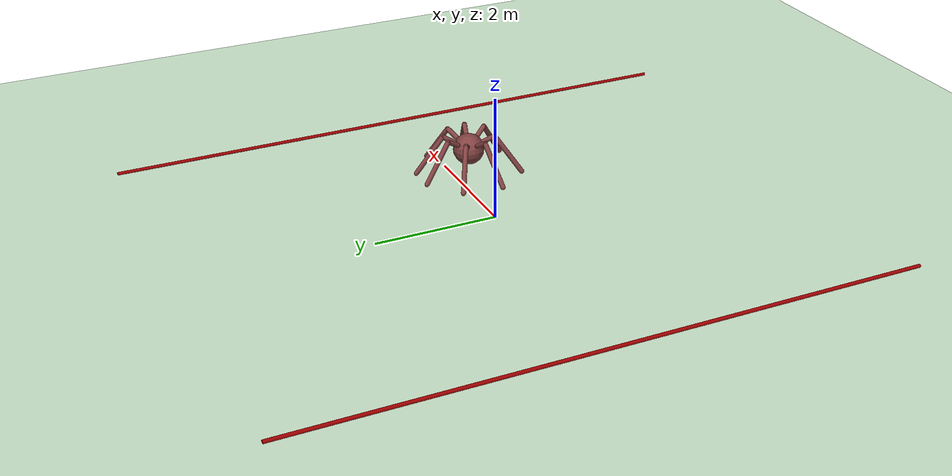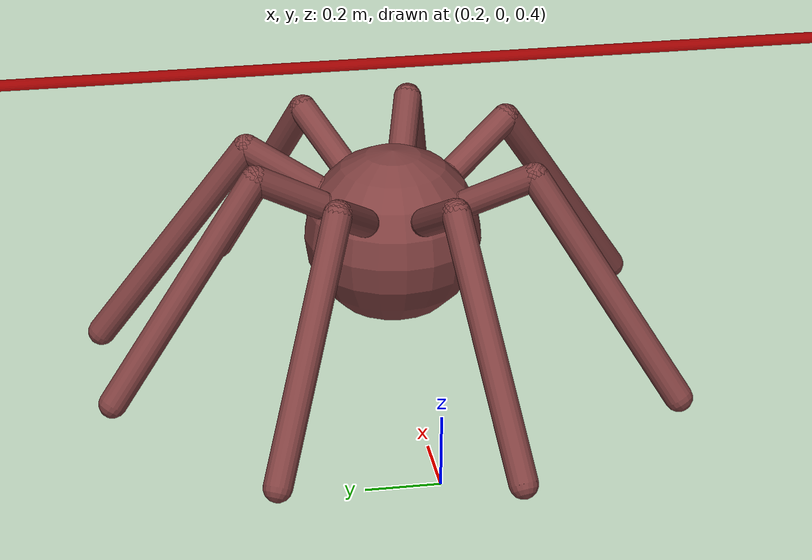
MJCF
<mujoco model="mutiagent_world">
  <compiler angle="degree" coordinate="local" inertiafromgeom="true" />

  <option integrator="RK4" timestep="0.003" solver="PGS" iterations="1000" />

  <default>
    <joint armature="1" damping="1" limited="true" />
  <default class="agent0"><geom conaffinity="1" condim="3" density="5.0" friction="1 0.5 0.5" margin="0.01" rgba="0.5 0.25 0.25 1" material="geom" />
    <motor ctrllimited="true" ctrlrange="-1. 1." />
  </default></default>
  <visual>
    <headlight ambient=".1 .1 .1" diffuse=".6 .6 .6" specular="0.3 0.3 0.3" />
    <map znear=".01" />
    <quality shadowsize="16384" />
  </visual>

  <asset>
    <texture builtin="gradient" height="100" rgb1=".4 .5 .6" rgb2="0 0 0" type="skybox" width="100" />
    <texture builtin="flat" height="1278" mark="cross" markrgb="0 0 0" name="texgeom" random="0.01" rgb1="0.8 0.6 0.4" rgb2="1 1 1" type="cube" width="127" />
    <texture builtin="checker" height="100" name="texplane" rgb1="0 0 0" rgb2="0.8 0.8 0.8" type="2d" width="100" />
    <material name="geom" texture="texgeom" texuniform="true" />
    <texture name="MatPlane" type="2d" builtin="checker" rgb1=".4 .4 .4" rgb2=".4 .4 .4" width="300" height="300" mark="edge" markrgb="0.1 0.1 0.1" />
    <material name="MatPlane" texture="MatPlane" texrepeat="2 2" texuniform="true" reflectance=".2" />
  </asset>
  <worldbody>
    <light cutoff="100" diffuse="1 1 1" dir="-0 0 -1.3" directional="true" exponent="1" pos="0 0 1.3" specular=".1 .1 .1" />
    <geom contype="1" conaffinity="1" friction="1 .1 .1" condim="3" material="MatPlane" name="floor" pos="0 0 0" rgba="0.8 0.9 0.8 1" size="20 20 0.125" type="plane" />
    <geom fromto="4 -5 0  4 +5 0" name="rightgoal" rgba="0.6 0.0 0.0 1" size=".03" type="cylinder" />
    <geom fromto="-4 -5 0  -4 +5 0" name="leftgoal" rgba="0.6 0.0 0.0 1" size=".03" type="cylinder" />
  <body name="agent0/torso" pos="1 0 0.75">
    <geom name="agent0/torso_geom" pos="0 0 0" size="0.25" type="sphere" class="agent0" />
    <joint armature="0" damping="0" limited="false" margin="0.01" name="agent0/root" pos="0 0 0" type="free" />

    <body name="agent0/back_right_leg" pos="0 0 0">
      <geom density="5.0" fromto="0 0 0 -0.056 0.209 0.125" name="agent0/aux_1_geom" size="0.04" type="capsule" class="agent0" />
      <body name="agent0/aux_11" pos="-0.056 0.209 0.125">
        <joint axis="0 0 1" name="agent0/hip_1" pos="0 0 0" range="-20 20" type="hinge" />
        <geom density="5.0" fromto="0 0 0 -0.050 0.188 0.113" name="agent0/back_right_leg_geom" size="0.04" type="capsule" class="agent0" />
        <body name="agent0/aux_12" pos="-0.050 0.188 0.113">
          <joint axis="0.97 0.26 0" name="agent0/ankle_1" pos="0 0 0" range="-35 45" type="hinge" />
          <geom density="5.0" fromto="0 0 0 -0.112 0.418 -0.600" name="agent0/back_right_ankle_geom" size="0.04" type="capsule" class="agent0" />
        </body>
      </body>
    </body>

    <body name="agent0/back_left_leg" pos="0 0 0">
      <geom density="5.0" fromto="0 0 0 0.056 0.209 0.125" name="agent0/aux_2_geom" size="0.04" type="capsule" class="agent0" />
      <body name="agent0/aux_21" pos="0.056 0.209 0.125">
        <joint axis="0 0 1" name="agent0/hip_2" pos="0 0 0" range="-20 20" type="hinge" />
        <geom density="5.0" fromto="0 0 0 0.050 0.188 0.113" name="agent0/back_left_leg_geom" size="0.04" type="capsule" class="agent0" />
        <body name="agent0/aux_22" pos="0.050 0.188 0.113">
          <joint axis="-0.97 0.26 0" name="agent0/ankle_2" pos="0 0 0" range="-45 35" type="hinge" />
          <geom density="5.0" fromto="0 0 0 0.112 0.418 -0.600" name="agent0/back_left_ankle_geom" size="0.04" type="capsule" class="agent0" />
        </body>
      </body>
    </body>

    <body name="agent0/middle_back_right_leg" pos="0 0 0">
      <geom density="5.0" fromto="0 0 0 -0.188 0.108 0.125" name="agent0/aux_3_geom" size="0.04" type="capsule" class="agent0" />
      <body name="agent0/aux_31" pos="-0.188 0.108 0.125">
        <joint axis="0 0 1" name="agent0/hip_3" pos="0 0 0" range="-20 20" type="hinge" />
        <geom density="5.0" fromto="0 0 0 -0.170 0.097 0.113" name="agent0/middle_back_right_leg_geom" size="0.04" type="capsule" class="agent0" />
        <body name="agent0/aux_32" pos="-0.170 0.097 0.113">
          <joint axis="0.50 0.87 0" name="agent0/ankle_3" pos="0 0 0" range="-35 45" type="hinge" />
          <geom density="5.0" fromto="0 0 0 -0.376 0.216 -0.600" name="agent0/middle_back_right_ankle_geom" size="0.04" type="capsule" class="agent0" />
        </body>
      </body>
    </body>

    <body name="agent0/middle_back_left_leg" pos="0 0 0">
      <geom density="5.0" fromto="0 0 0 0.188 0.108 0.125" name="agent0/aux_4_geom" size="0.04" type="capsule" class="agent0" />
      <body name="agent0/aux_41" pos="0.188 0.108 0.125">
        <joint axis="0 0 1" name="agent0/hip_4" pos="0 0 0" range="-20 20" type="hinge" />
        <geom density="5.0" fromto="0 0 0 0.170 0.097 0.113" name="agent0/middle_back_left_leg_geom" size="0.04" type="capsule" class="agent0" />
        <body name="agent0/aux_42" pos="0.170 0.097 0.113">
          <joint axis="-0.50 0.87 0" name="agent0/ankle_4" pos="0 0 0" range="-45 35" type="hinge" />
          <geom density="5.0" fromto="0 0 0 0.376 0.216 -0.600" name="agent0/middle_back_left_ankle_geom" size="0.04" type="capsule" class="agent0" />
        </body>
      </body>
    </body>

    <body name="agent0/middle_front_right_leg" pos="0 0 0">
      <geom density="5.0" fromto="0 0 0 -0.209 -0.056 0.125" name="agent0/aux_5_geom" size="0.04" type="capsule" class="agent0" />
      <body name="agent0/aux_51" pos="-0.209 -0.056 0.125">
        <joint axis="0 0 1" name="agent0/hip_5" pos="0 0 0" range="-20 20" type="hinge" />
        <geom density="5.0" fromto="0 0 0 -0.188 -0.050 0.113" name="agent0/middle_front_right_leg_geom" size="0.04" type="capsule" class="agent0" />
        <body name="agent0/aux_52" pos="-0.188 -0.050 0.113">
          <joint axis="-0.26 0.97 0" name="agent0/ankle_5" pos="0 0 0" range="-35 45" type="hinge" />
          <geom density="5.0" fromto="0 0 0 -0.418 -0.112 -0.600" name="agent0/middle_front_right_ankle_geom" size="0.04" type="capsule" class="agent0" />
        </body>
      </body>
    </body>

    <body name="agent0/middle_front_left_leg" pos="0 0 0">
      <geom density="5.0" fromto="0 0 0 0.209 -0.056 0.125" name="agent0/aux_6_geom" size="0.04" type="capsule" class="agent0" />
      <body name="agent0/aux_61" pos="0.209 -0.056 0.125">
        <joint axis="0 0 1" name="agent0/hip_6" pos="0 0 0" range="-20 20" type="hinge" />
        <geom density="5.0" fromto="0 0 0 0.188 -0.050 0.113" name="agent0/middle_front_left_leg_geom" size="0.04" type="capsule" class="agent0" />
        <body name="agent0/aux_62" pos="0.188 -0.050 0.113">
          <joint axis="0.26 0.97 0" name="agent0/ankle_6" pos="0 0 0" range="-45 35" type="hinge" />
          <geom density="5.0" fromto="0 0 0 0.418 -0.112 -0.600" name="agent0/middle_front_left_ankle_geom" size="0.04" type="capsule" class="agent0" />
        </body>
      </body>
    </body>

    <body name="agent0/front_right_leg" pos="0 0 0">
      <geom density="5.0" fromto="0 0 0 -0.108 -0.188 0.125" name="agent0/aux_7_geom" size="0.04" type="capsule" class="agent0" />
      <body name="agent0/aux_71" pos="-0.108 -0.188 0.125">
        <joint axis="0 0 1" name="agent0/hip_7" pos="0 0 0" range="-20 20" type="hinge" />
        <geom density="5.0" fromto="0 0 0 -0.097 -0.170 0.113" name="agent0/front_right_leg_geom" size="0.04" type="capsule" class="agent0" />
        <body name="agent0/aux_72" pos="-0.097 -0.170 0.113">
          <joint axis="-0.87 0.50 0" name="agent0/ankle_7" pos="0 0 0" range="-35 45" type="hinge" />
          <geom density="5.0" fromto="0 0 0 -0.216 -0.376 -0.600" name="agent0/front_right_ankle_geom" size="0.04" type="capsule" class="agent0" />
        </body>
      </body>
    </body>

    <body name="agent0/front_left_leg" pos="0 0 0">
      <geom density="5.0" fromto="0 0 0 0.108 -0.188 0.125" name="agent0/aux_8_geom" size="0.04" type="capsule" class="agent0" />
      <body name="agent0/aux_81" pos="0.108 -0.188 0.125">
        <joint axis="0 0 1" name="agent0/hip_8" pos="0 0 0" range="-20 20" type="hinge" />
        <geom density="5.0" fromto="0 0 0 0.097 -0.170 0.113" name="agent0/front_left_leg_geom" size="0.04" type="capsule" class="agent0" />
        <body name="agent0/aux_82" pos="0.097 -0.170 0.113">
          <joint axis="0.87 0.50 0" name="agent0/ankle_8" pos="0 0 0" range="-45 35" type="hinge" />
          <geom density="5.0" fromto="0 0 0 0.216 -0.376 -0.600" name="agent0/front_left_ankle_geom" size="0.04" type="capsule" class="agent0" />
        </body>
      </body>
    </body>
  </body>
  </worldbody>
<actuator>
    <motor ctrllimited="true" ctrlrange="-1.0 1.0" joint="agent0/hip_1" gear="50" class="agent0" />
    <motor ctrllimited="true" ctrlrange="-1.0 1.0" joint="agent0/ankle_1" gear="50" class="agent0" />
    <motor ctrllimited="true" ctrlrange="-1.0 1.0" joint="agent0/hip_2" gear="50" class="agent0" />
    <motor ctrllimited="true" ctrlrange="-1.0 1.0" joint="agent0/ankle_2" gear="50" class="agent0" />
    <motor ctrllimited="true" ctrlrange="-1.0 1.0" joint="agent0/hip_3" gear="50" class="agent0" />
    <motor ctrllimited="true" ctrlrange="-1.0 1.0" joint="agent0/ankle_3" gear="50" class="agent0" />
    <motor ctrllimited="true" ctrlrange="-1.0 1.0" joint="agent0/hip_4" gear="50" class="agent0" />
    <motor ctrllimited="true" ctrlrange="-1.0 1.0" joint="agent0/ankle_4" gear="50" class="agent0" />
    <motor ctrllimited="true" ctrlrange="-1.0 1.0" joint="agent0/hip_5" gear="50" class="agent0" />
    <motor ctrllimited="true" ctrlrange="-1.0 1.0" joint="agent0/ankle_5" gear="50" class="agent0" />
    <motor ctrllimited="true" ctrlrange="-1.0 1.0" joint="agent0/hip_6" gear="50" class="agent0" />
    <motor ctrllimited="true" ctrlrange="-1.0 1.0" joint="agent0/ankle_6" gear="50" class="agent0" />
    <motor ctrllimited="true" ctrlrange="-1.0 1.0" joint="agent0/hip_7" gear="50" class="agent0" />
    <motor ctrllimited="true" ctrlrange="-1.0 1.0" joint="agent0/ankle_7" gear="50" class="agent0" />
    <motor ctrllimited="true" ctrlrange="-1.0 1.0" joint="agent0/hip_8" gear="50" class="agent0" />
    <motor ctrllimited="true" ctrlrange="-1.0 1.0" joint="agent0/ankle_8" gear="50" class="agent0" />
  </actuator>
  </mujoco>
